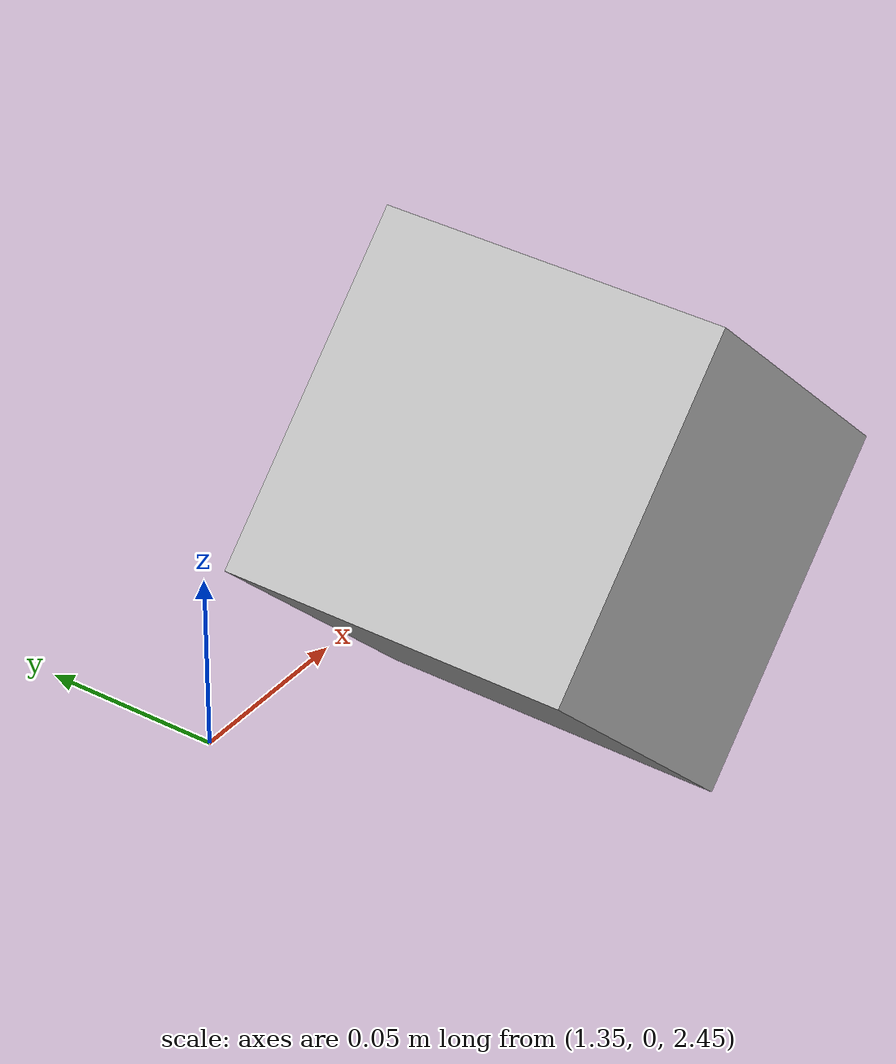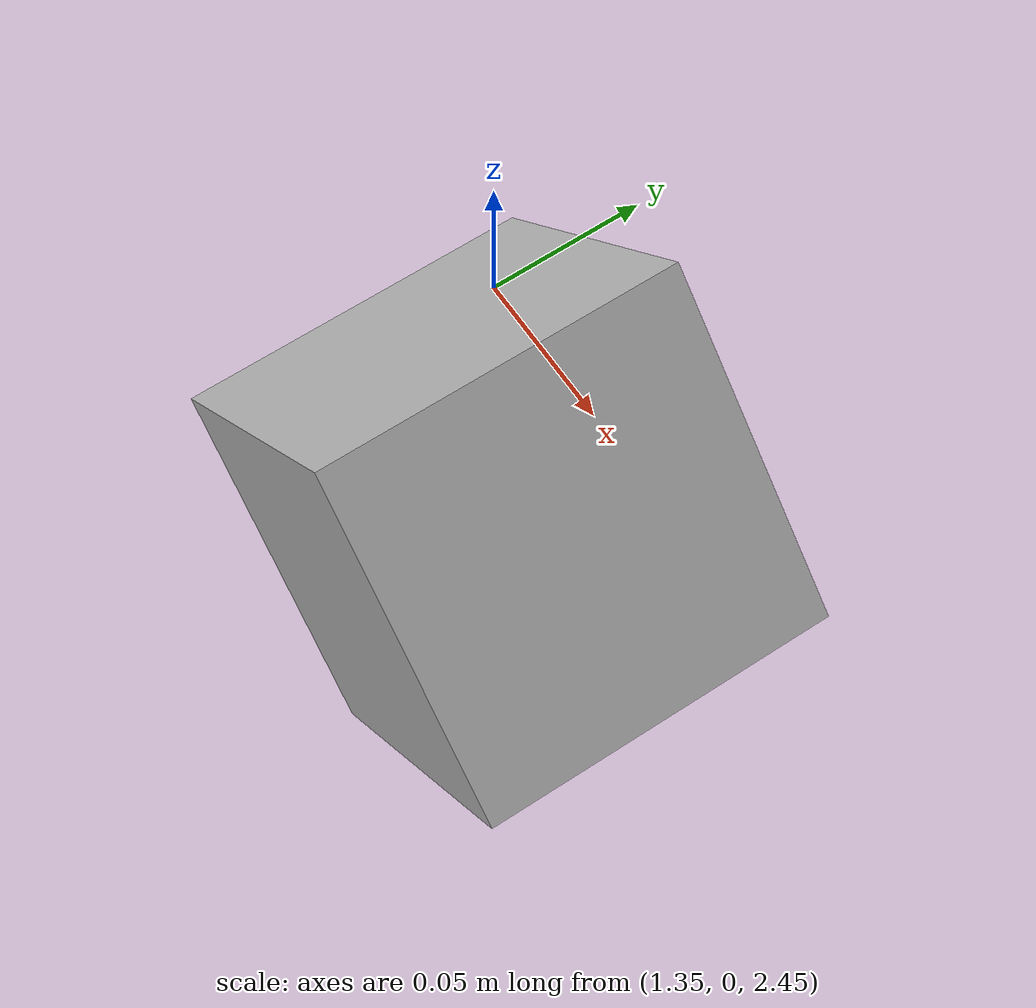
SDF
<sdf version="1.6">
    <world name="empty">
        <physics name="1ms" type="ignored">
            <max_step_size>0.001</max_step_size>
            <real_time_factor>1.0</real_time_factor>
        </physics>
        <plugin filename="ignition-gazebo-physics-system" name="gz::sim::systems::Physics">
        </plugin>
        <plugin filename="ignition-gazebo-user-commands-system" name="gz::sim::systems::UserCommands">
        </plugin>
        <plugin filename="ignition-gazebo-scene-broadcaster-system" name="gz::sim::systems::SceneBroadcaster">
        </plugin>
        <plugin filename="ignition-gazebo-contact-system" name="gz::sim::systems::Contact">
        </plugin>
        <plugin filename="ignition-gazebo-sensors-system" name="gz::sim::systems::Sensors">
        </plugin>
        <plugin filename="ignition-gazebo-imu-system" name="gz::sim::systems::Imu">
        </plugin>
        <light type="directional" name="sun">
            <cast_shadows>true</cast_shadows>
            <pose>0 0 10 0 0 0</pose>
            <diffuse>0.8 0.8 0.8 1</diffuse>
            <specular>0.2 0.2 0.2 1</specular>
            <attenuation>
                <range>1000</range>
                <constant>0.9</constant>
                <linear>0.01</linear>
                <quadratic>0.001</quadratic>
            </attenuation>
            <direction>-0.5 0.1 -0.9</direction>
        </light>

        <model name="ground_plane">
            <static>true</static>
            <link name="link">
                <collision name="collision">
                    <geometry>
                        <plane>
                            <normal>0 0 1</normal>
                            <size>100 100</size>
                        </plane>
                    </geometry>
                </collision>
                <visual name="visual">
                    <geometry>
                        <plane>
                            <normal>0 0 1</normal>
                            <size>100 100</size>
                        </plane>
                    </geometry>
                    <material>
                        <ambient>0.8 0.8 0.8 1</ambient>
                        <diffuse>0.8 0.8 0.8 1</diffuse>
                        <specular>0.8 0.8 0.8 1</specular>
                    </material>
                </visual>
            </link>
        </model>

        <model name="camera">
            <static>true</static>

            <pose>1.5 0 2.5 0 0.8 3.14</pose>
            <link name="link">
                <pose>0.05 0.05 0.05 0 0 0</pose>
                <inertial>
                    <mass>0.1</mass>
                    <inertia>
                        <ixx>0.000166667</ixx>
                        <iyy>0.000166667</iyy>
                        <izz>0.000166667</izz>
                    </inertia>
                </inertial>
                <collision name="collision">
                    <geometry>
                        <box>
                            <size>0.1 0.1 0.1</size>
                        </box>
                    </geometry>
                </collision>
                <visual name="visual">
                    <geometry>
                        <box>
                            <size>0.1 0.1 0.1</size>
                        </box>
                    </geometry>
                </visual>
                <sensor name="camera" type="camera">
                    <camera>
                        <horizontal_fov>1.047</horizontal_fov>
                        <image>
                            <width>640</width>
                            <height>480</height>
                        </image>
                        <clip>
                            <near>0.01</near>
                            <far>10</far>
                        </clip>
                    </camera>
                    <always_on>1</always_on>
                    <update_rate>30</update_rate>
                    <visualize>true</visualize>
                    <topic>camera</topic>
                </sensor>
            </link>
        </model>
    </world>
</sdf>
